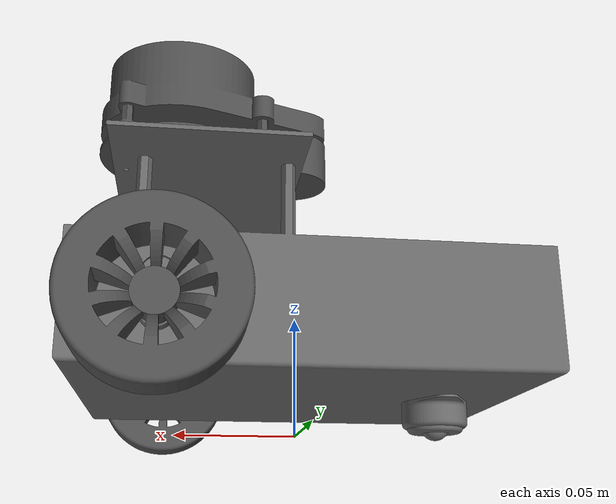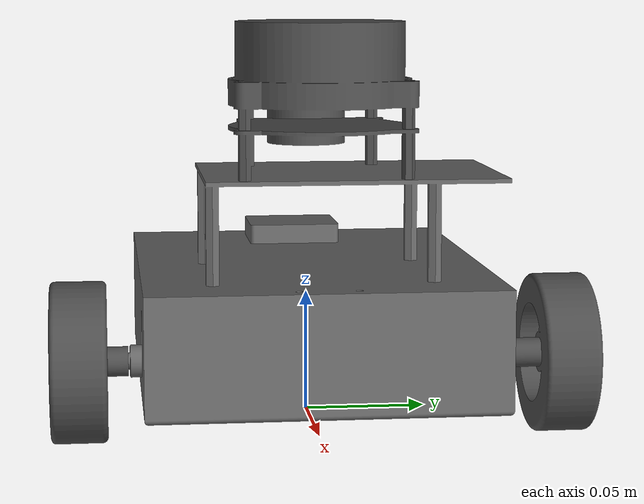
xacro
<?xml version="1.0" ?>
<robot name="stella" xmlns:xacro="http://ros.org/wiki/xacro">
  <xacro:property name="PI" value="3.1415926535897931"/>
  <xacro:property name="bodyHeight" value="0.04836"/>
  <xacro:property name="bodyLength" value="0.18016"/>
  <xacro:property name="bodyWidth" value="0.13962"/>
  <xacro:property name="bodyMass" value="1.47075"/>
  <xacro:property name="bodyOrigin" value="0.0 0.0 0.0395"/>

  <xacro:property name="imuHeight" value="0.0082"/>
  <xacro:property name="imuLength" value="0.034"/>
  <xacro:property name="imuWidth" value="0.039"/>
  <xacro:property name="imuOrigin" value="${0.01 + imuLength/2 - bodyLength/2} 0.0 ${bodyHeight/2 + imuHeight/2}"/>

  <xacro:property name="scanHeight" value="0.0255"/>
  <xacro:property name="scanDiameter" value="0.0656"/>
  <xacro:property name="scanOrigin" value="${bodyLength/2 - 0.017 - 0.021} 0.0 ${bodyHeight/2 + 0.0409 + 0.027 + 0.0065 + scanHeight/2}"/>

  <xacro:property name="axleLength" value="0.1878"/>
  <xacro:property name="axleOriginX" value="${bodyLength/2 - 0.0335}"/>
  <xacro:property name="axleOriginZ" value="${bodyHeight/2 - 0.03036}"/>

  <xacro:property name="wheelRadius" value="0.0311"/>
  <xacro:property name="wheelWidth" value="0.0216"/>

  <xacro:property name="casterRadius" value="0.006"/>
  <xacro:property name="casterOrigin" value="-0.06008 0.0 ${axleOriginZ - wheelRadius + casterRadius}"/>

  <xacro:include filename="$(find stella_description)/urdf/stella.gazebo.xacro" />

  <xacro:property name="black" value="0.0 0.0 0.0 1.0"/>
  <xacro:property name="dark" value="0.3 0.3 0.3 1.0"/>
  <xacro:property name="light_black" value="0.4 0.4 0.4 1.0"/>
  <xacro:property name="blue" value="0.2 0.2 0.8 1.0"/>
  <xacro:property name="green" value="0.0 0.8 0.0 1.0"/>
  <xacro:property name="grey" value="0.5 0.5 0.5 1.0"/>
  <xacro:property name="orange" value="1.0 0.4235 0.0392 1.0"/>
  <xacro:property name="brown" value="0.8706 0.8118 0.7647 1.0"/>
  <xacro:property name="red" value="0.8 0.0 0.0 1.0"/>
  <xacro:property name="white" value="1.0 1.0 1.0 1.0"/>

  <xacro:macro name="mat" params="name rgba">
    <material name="${name}">
      <color rgba="${rgba}"/>
    </material>
  </xacro:macro>

  <xacro:mat name="black" rgba="${black}"/>
  <xacro:mat name="dark" rgba="${dark}"/>
  <xacro:mat name="light_black" rgba="${light_black}"/>
  <xacro:mat name="blue" rgba="${blue}"/>
  <xacro:mat name="green" rgba="${green}"/>
  <xacro:mat name="grey" rgba="${grey}"/>
  <xacro:mat name="orange" rgba="${orange}"/>
  <xacro:mat name="brown" rgba="${brown}"/>
  <xacro:mat name="red" rgba="${red}"/>
  <xacro:mat name="white" rgba="${white}"/>

  <link name="base_footprint"/>

  <joint name="base_joint" type="fixed">
    <parent link="base_footprint"/>
    <child link="base_link" />
    <origin xyz="${bodyOrigin}" rpy="0.0 0.0 0.0"/>
  </joint>

  <link name="base_link">
    <visual>
      <origin xyz="0.0 0.0 0.0" rpy="0.0 0.0 0.0"/>
      <geometry>
        <mesh filename="package://stella_description/meshes/stella_body.stl"/>
      </geometry>
      <material name="light_black"/>
    </visual>

    <collision>
      <origin xyz="0.0 0.0 0.0" rpy="0.0 0.0 0.0"/>
      <geometry>
        <box size="${bodyLength} ${bodyWidth} ${bodyHeight}"/>
      </geometry>
    </collision>

    <inertial>
      <origin xyz="0.0 0.0 0.0" rpy="0.0 0.0 0.0"/>
      <mass value="${bodyMass}"/>
      <inertia ixx="${1/12*bodyMass*(bodyWidth*bodyWidth + bodyHeight*bodyHeight)}" ixy="0.0" ixz="0.0"
               iyy="${1/12*bodyMass*(bodyLength*bodyLength + bodyHeight*bodyHeight)}" iyz="0.0"
               izz="${1/12*bodyMass*(bodyLength*bodyLength + bodyWidth*bodyWidth)}"/>
    </inertial>
  </link>

  <joint name="imu_joint" type="fixed">
    <parent link="base_link"/>
    <child link="imu_link"/>
    <origin xyz="${imuOrigin}" rpy="0.0 0.0 0.0"/>
  </joint>

  <link name="imu_link" />

  <joint name="scan_joint" type="fixed">
    <parent link="base_link"/>
    <child link="base_scan"/>
    <origin xyz="${scanOrigin}" rpy="0.0 0.0 0.0"/>
  </joint>

  <link name="base_scan">
    <visual>
      <origin xyz="0.0 0.0 ${-scanHeight/2-0.0065}" rpy="0.0 0.0 0.0"/>
      <geometry>
        <mesh filename="package://stella_description/meshes/ydlidar_x4.stl"/>
      </geometry>
      <material name="dark"/>
    </visual>

    <collision>
      <origin xyz="0.0 0.0 ${-scanHeight/2-0.0065}" rpy="0.0 0.0 0.0"/>
      <geometry>
        <mesh filename="package://stella_description/meshes/ydlidar_x4.stl"/>
      </geometry>
    </collision>

    <inertial>
      <origin xyz="0.0 0.0 0.0" rpy="0.0 0.0 0.0"/>
      <mass value="0.189" />
      <inertia ixx="0.00015856" ixy="0.0" ixz="0.0"
               iyy="0.00015856" iyz="0.0"
               izz="0.00028586"/>
    </inertial>
  </link>

  <joint name="caster_joint" type="fixed">
    <parent link="base_link"/>
    <child link="caster_link"/>
    <origin xyz="${casterOrigin}" rpy="0.0 0.0 0.0"/>
  </joint>

  <link name="caster_link">
    <collision>
      <origin xyz="0.0 0.0 0.0" rpy="0.0 0.0 0.0"/>
      <geometry>
        <sphere radius="${casterRadius}"/>
      </geometry>
    </collision>
  </link>

  <joint name="wheel_l_joint" type="continuous">
    <parent link="base_link"/>
    <child link="wheel_l_link"/>
    <origin xyz="${axleOriginX} ${axleLength/2} ${axleOriginZ}" rpy="${-PI/2} 0.0 0.0"/>
    <axis xyz="0 0 1"/>
    <limit effort="10000" velocity="1000"/>
    <joint_properties damping="1.0" friction="1.0"/>
  </joint>

  <link name="wheel_l_link">
    <visual>
      <origin xyz="0.0 0.0 0.0" rpy="0.0 0.0 0.0"/>
      <geometry>
        <mesh filename="package://stella_description/meshes/stella_wheel.stl"/>
      </geometry>
      <material name="dark"/>
    </visual>

    <collision>
      <origin xyz="0.0 0.0 0.0" rpy="0.0 0.0 0.0"/>
      <geometry>
        <cylinder radius="${wheelRadius}" length="${wheelWidth}"/>
      </geometry>
    </collision>

    <inertial>
      <origin xyz="0.0 0.0 0.0" rpy="0.0 0.0 0.0"/>
      <mass value="0.0443" />
      <inertia ixx="1.2E-05" ixy="0.0" ixz="0.0"
               iyy="1.2E-05" iyz="0.0"
               izz="2.1E-05"/>
    </inertial>
  </link>

  <joint name="wheel_r_joint" type="continuous">
    <parent link="base_link"/>
    <child link="wheel_r_link"/>
    <origin xyz="${axleOriginX} ${-axleLength/2} ${axleOriginZ}" rpy="${-PI/2} 0.0 0.0"/>
    <axis xyz="0 0 1"/>
    <limit effort="10000" velocity="1000"/>
    <joint_properties damping="1.0" friction="1.0"/>
  </joint>

  <link name="wheel_r_link">
    <visual>
      <origin xyz="0.0 0.0 0.0" rpy="${PI} 0.0 0.0"/>
      <geometry>
        <mesh filename="package://stella_description/meshes/stella_wheel.stl"/>
      </geometry>
      <material name="dark"/>
    </visual>

    <collision>
      <origin xyz="0.0 0.0 0.0" rpy="${PI} 0.0 0.0"/>
      <geometry>
        <cylinder radius="${wheelRadius}" length="${wheelWidth}"/>
      </geometry>
    </collision>

    <inertial>
      <origin xyz="0.0 0.0 0.0" rpy="0.0 0.0 0.0"/>
      <mass value="0.0443" />
      <inertia ixx="1.2E-05" ixy="0.0" ixz="0.0"
               iyy="1.2E-05" iyz="0.0"
               izz="2.1E-05"/>
    </inertial>
  </link>

</robot>
